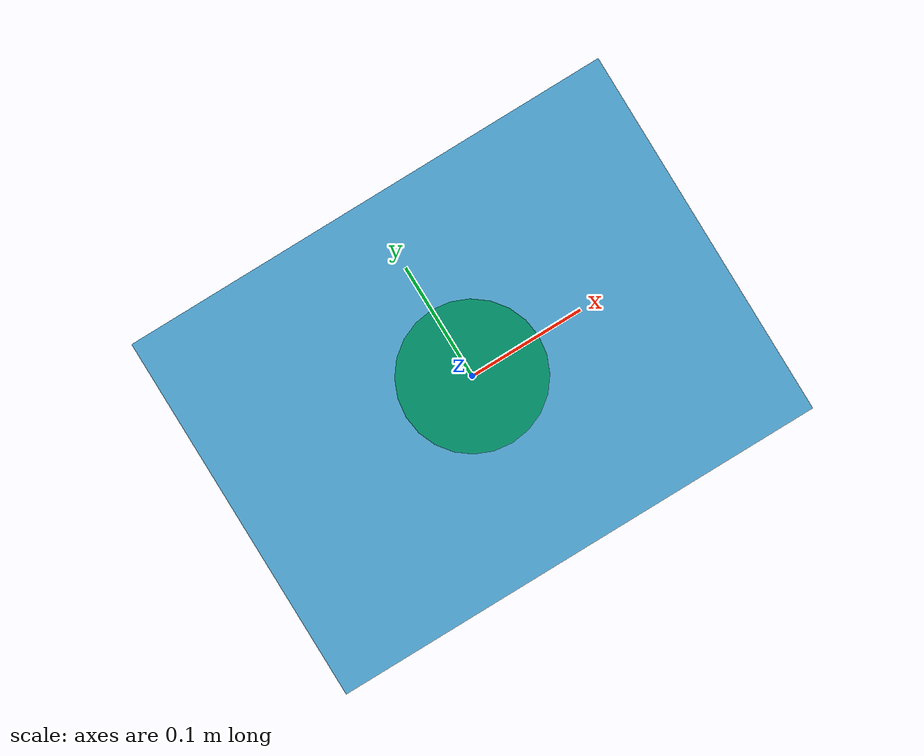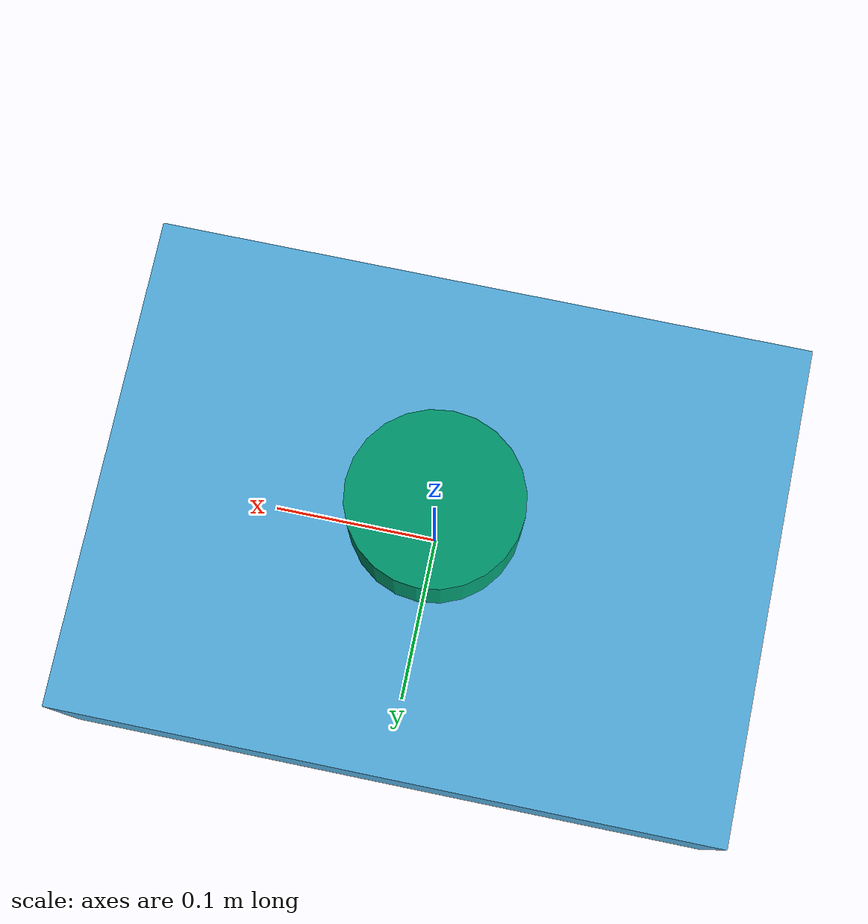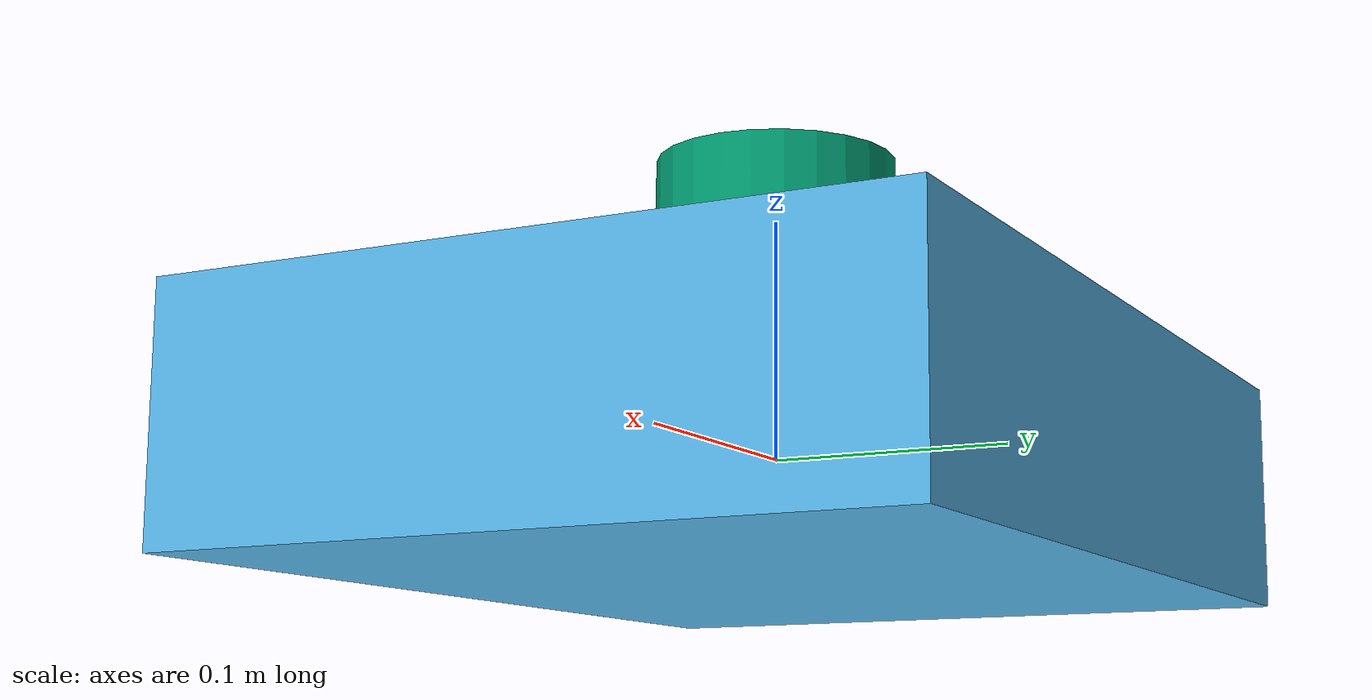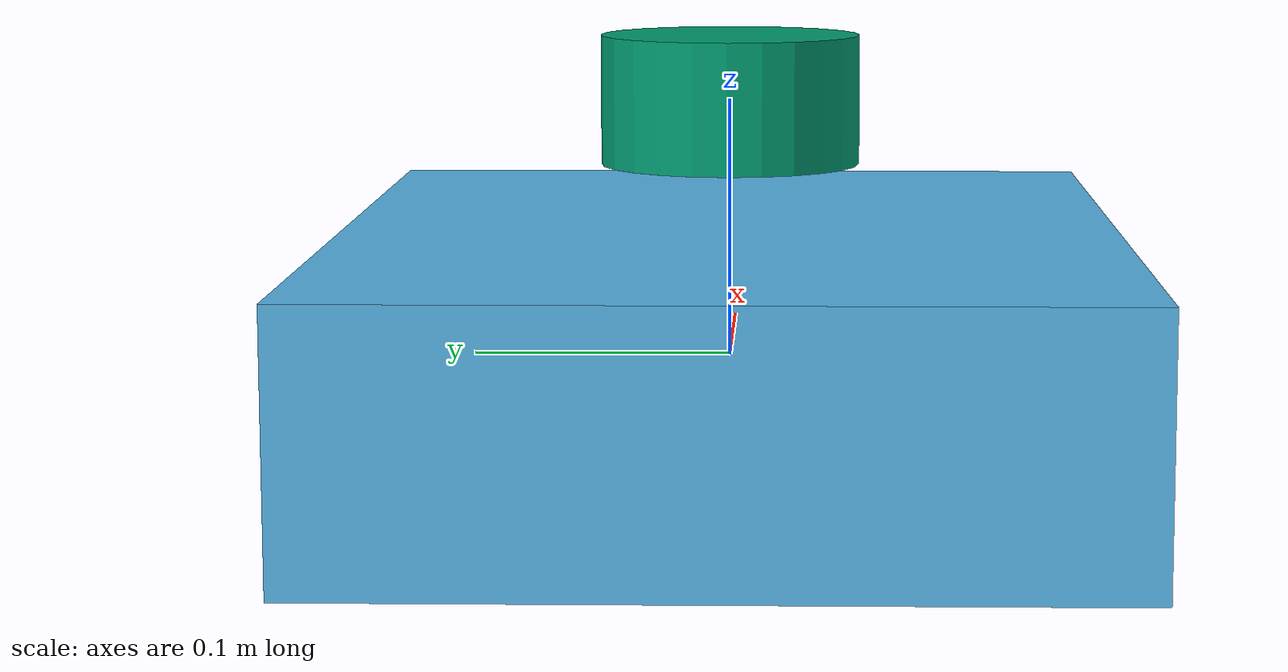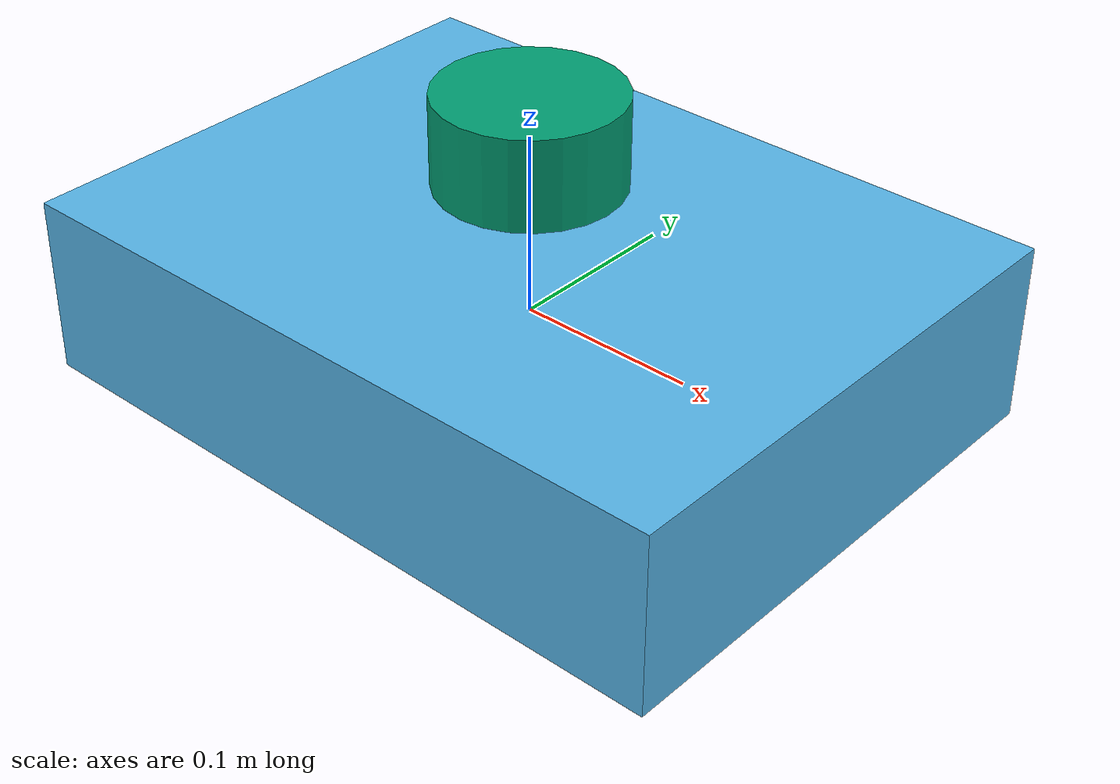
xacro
<?xml version="1.0"?>
<robot name="mid360_demo" xmlns:xacro="http://www.ros.org/wiki/xacro">
  <xacro:include filename="$(find livox_mid360_gz_sim)/urdf/mid360_gz_plugin.xacro"/>
  <link name="base_footprint"/>
  <link name="base_link">
    <visual><geometry><box size="0.4 0.3 0.1"/></geometry></visual>
    <collision><geometry><box size="0.4 0.3 0.1"/></geometry></collision>
    <inertial><mass value="10"/><inertia ixx="0.1" ixy="0" ixz="0" iyy="0.1" iyz="0" izz="0.1"/></inertial>
  </link>
  <joint name="base_joint" type="fixed">
    <parent link="base_footprint"/><child link="base_link"/>
  </joint>
  <link name="mid360_link">
    <visual><geometry><cylinder radius="0.05" length="0.05"/></geometry></visual>
    <inertial><mass value="0.265"/><inertia ixx="0.0002" ixy="0" ixz="0" iyy="0.0002" iyz="0" izz="0.0003"/></inertial>
  </link>
  <joint name="mid360_joint" type="fixed">
    <parent link="base_link"/><child link="mid360_link"/>
    <origin xyz="0 0 0.1" rpy="0 0 0"/>
  </joint>
  <gazebo reference="mid360_joint">
    <disableFixedJointLumping>true</disableFixedJointLumping>
  </gazebo>
  <link name="laser_link"/>
  <joint name="laser_alias_joint" type="fixed">
    <parent link="mid360_link"/><child link="laser_link"/>
  </joint>
  <xacro:livox_mid360_gz_plugin link_name="mid360_link" frame_id="laser_link"/>
</robot>

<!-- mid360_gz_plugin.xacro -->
<robot xmlns:xacro="http://www.ros.org/wiki/xacro">
  <xacro:property name="livox_mid360_gz_sim_default_csv"
                  value="$(find livox_mid360_gz_sim)/config/mid360-real-centr.csv"/>
  <xacro:macro name="livox_mid360_gz_plugin" params="
      link_name:=mid360_link
      node_name:=livox_mid360_gz_sim
      frame_id:=laser_link
      topic:=/livox/lidar
      points_topic:=/livox/lidar/points
      ground_truth_points_topic:=/ground_truth/livox/points
      ground_truth_odom_topic:=/ground_truth/odometry
      ground_truth_frame_id:=camera_init
      enable_ground_truth:=true
      csv_file_name:=${livox_mid360_gz_sim_default_csv}
      samples:=20000
      downsample:=1
      update_rate:=10.0
      min_range:=0.2
      max_range:=50.0
      noise_seed:=42
      range_noise_stddev:=0.01
      range_bias:=0.0
      range_drift_per_second:=0.0002
      dropout_rate:=0.01">
    <gazebo>
      <plugin filename="liblivox_mid360_gz_sim_plugin.so"
              name="livox_mid360_gz_sim::LivoxMid360GzPlugin">
        <link_name>${link_name}</link_name>
        <node_name>${node_name}</node_name>
        <frame_id>${frame_id}</frame_id>
        <topic>${topic}</topic>
        <points_topic>${points_topic}</points_topic>
        <ground_truth_points_topic>${ground_truth_points_topic}</ground_truth_points_topic>
        <ground_truth_odom_topic>${ground_truth_odom_topic}</ground_truth_odom_topic>
        <ground_truth_frame_id>${ground_truth_frame_id}</ground_truth_frame_id>
        <enable_ground_truth>${enable_ground_truth}</enable_ground_truth>
        <csv_file_name>${csv_file_name}</csv_file_name>
        <samples>${samples}</samples>
        <downsample>${downsample}</downsample>
        <update_rate>${update_rate}</update_rate>
        <min_range>${min_range}</min_range>
        <max_range>${max_range}</max_range>
        <noise_seed>${noise_seed}</noise_seed>
        <range_noise_stddev>${range_noise_stddev}</range_noise_stddev>
        <range_bias>${range_bias}</range_bias>
        <range_drift_per_second>${range_drift_per_second}</range_drift_per_second>
        <dropout_rate>${dropout_rate}</dropout_rate>
      </plugin>
    </gazebo>
  </xacro:macro>
</robot>
